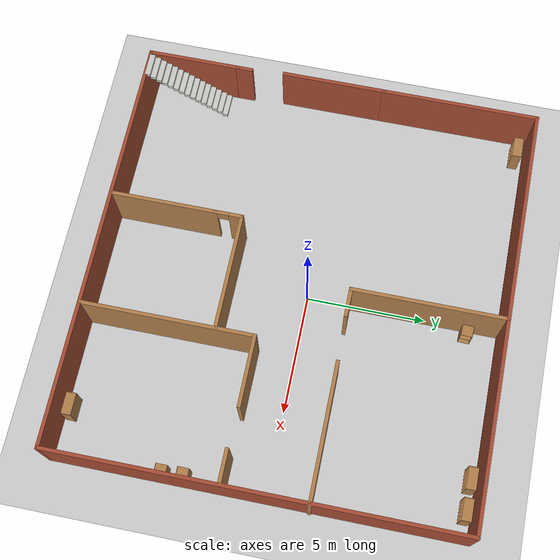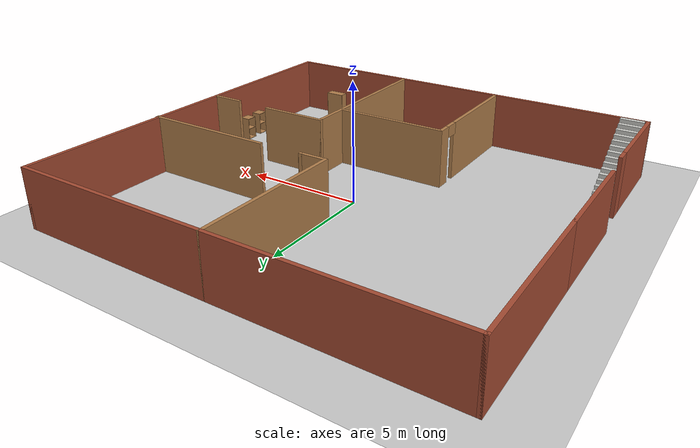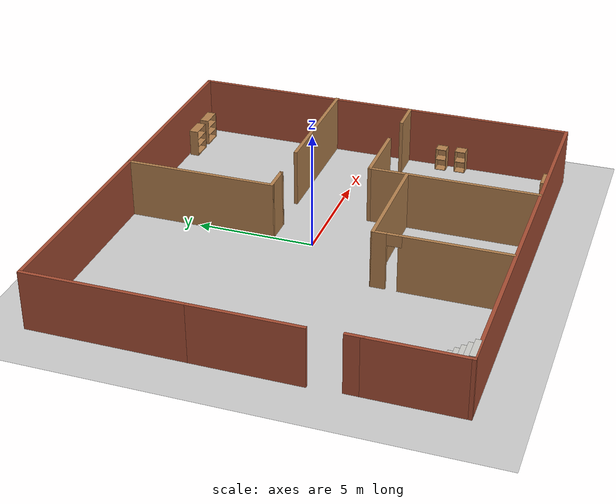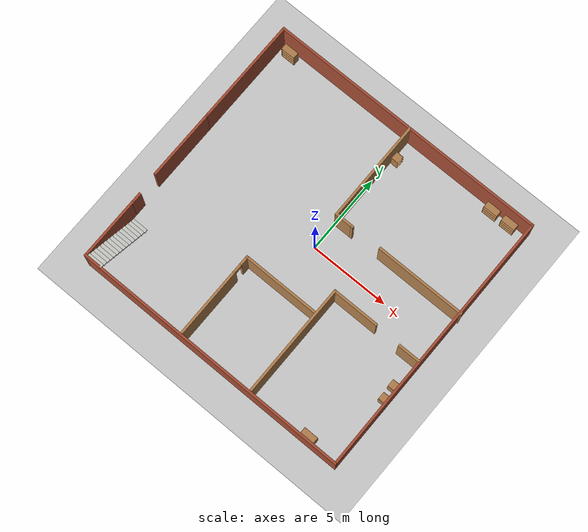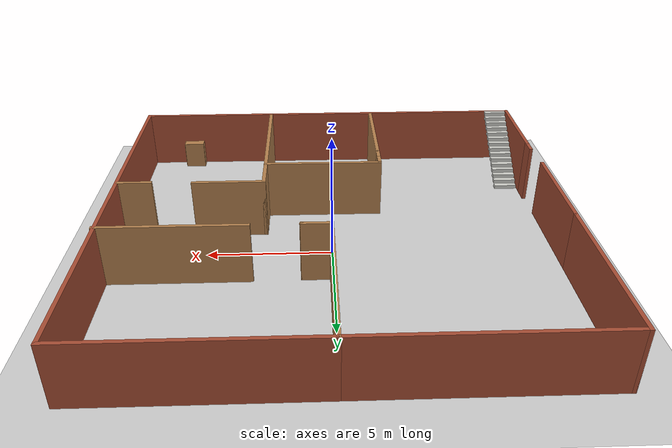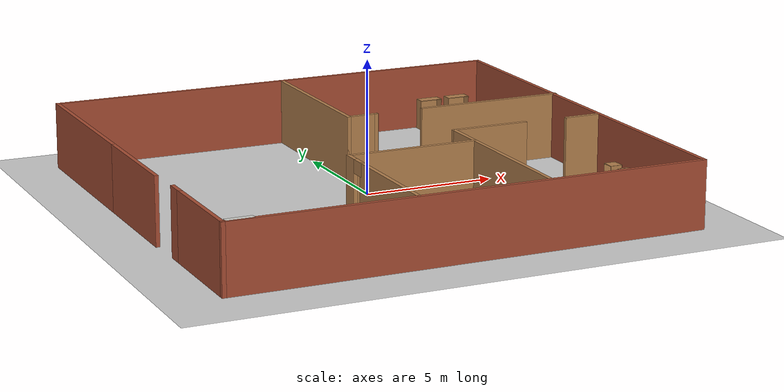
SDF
<sdf version="1.7">
 <world name="default">
  <light name="sun" type="directional">
   <pose>0 0 10 0 -0 0</pose>
   <diffuse>0.8 0.8 0.8 1</diffuse>
   <specular>0.2 0.2 0.2 1</specular>
   <attenuation>
    <range>1000</range>
    <constant>0.9</constant>
    <linear>0.01</linear>
    <quadratic>0.001</quadratic>
   </attenuation>
   <direction>-0.5 0.1 -0.9</direction>
   <spot><inner_angle>0</inner_angle><outer_angle>0</outer_angle><falloff>0</falloff></spot>
  </light>
  <model name="ground_plane">
   <static>1</static>
   <link name="link">
    <collision name="collision">
     <geometry><plane><normal>0 0 1</normal><size>100 100</size></plane></geometry>
     <surface><friction><ode><mu>100</mu><mu2>50</mu2></ode></friction></surface>
    </collision>
    <visual name="visual">
     <cast_shadows>0</cast_shadows>
     <geometry><plane><normal>0 0 1</normal><size>100 100</size></plane></geometry>
     <material>
      <script><uri>file://media/materials/scripts/gazebo.material</uri><name>Gazebo/Grey</name></script>
     </material>
    </visual>
   </link>
  </model>
  <gravity>0 0 -9.8</gravity>
  <magnetic_field>6e-06 2.3e-05 -4.2e-05</magnetic_field>
  <atmosphere type="adiabatic"/>
  <physics type="ode">
   <max_step_size>0.001</max_step_size>
   <real_time_factor>1</real_time_factor>
   <real_time_update_rate>1000</real_time_update_rate>
  </physics>
  <scene><ambient>0.4 0.4 0.4 1</ambient><background>0.7 0.7 0.7 1</background><shadows>1</shadows></scene>
  <audio><device>default</device></audio>
  <spherical_coordinates>
   <surface_model>EARTH_WGS84</surface_model>
   <latitude_deg>0</latitude_deg>
   <longitude_deg>0</longitude_deg>
   <elevation>0</elevation>
   <heading_deg>0</heading_deg>
  </spherical_coordinates>
  <model name="Indoor">
   <pose>-0.163145 -0.298251 0 0 -0 0</pose>
   <link name="Stairs_0">
    <visual name="Stairs_0_Visual_0">
     <pose>-8.16542 -5.04769 0.083333 0 -0 0</pose>
     <geometry><box><size>1 0.233333 0.166667</size></box></geometry>
     <material>
      <script><uri>file://media/materials/scripts/gazebo.material</uri><name>Gazebo/CeilingTiled</name></script>
      <ambient>1 1 1 1</ambient>
     </material>
     <meta><layer>0</layer></meta>
    </visual>
    <collision name="Stairs_0_Collision_0">
     <geometry><box><size>1 0.233333 0.166667</size></box></geometry>
     <pose>-8.16542 -5.04769 0.083333 0 -0 0</pose>
    </collision>
    <visual name="Stairs_0_Visual_1">
     <pose>-8.16542 -5.28102 0.25 0 -0 0</pose>
     <geometry><box><size>1 0.233333 0.166667</size></box></geometry>
     <material>
      <script><uri>file://media/materials/scripts/gazebo.material</uri><name>Gazebo/CeilingTiled</name></script>
      <ambient>1 1 1 1</ambient>
     </material>
     <meta><layer>0</layer></meta>
    </visual>
    <collision name="Stairs_0_Collision_1">
     <geometry><box><size>1 0.233333 0.166667</size></box></geometry>
     <pose>-8.16542 -5.28102 0.25 0 -0 0</pose>
    </collision>
    <visual name="Stairs_0_Visual_2">
     <pose>-8.16542 -5.51436 0.416667 0 -0 0</pose>
     <geometry><box><size>1 0.233333 0.166667</size></box></geometry>
     <material>
      <script><uri>file://media/materials/scripts/gazebo.material</uri><name>Gazebo/CeilingTiled</name></script>
      <ambient>1 1 1 1</ambient>
     </material>
     <meta><layer>0</layer></meta>
    </visual>
    <collision name="Stairs_0_Collision_2">
     <geometry><box><size>1 0.233333 0.166667</size></box></geometry>
     <pose>-8.16542 -5.51436 0.416667 0 -0 0</pose>
    </collision>
    <visual name="Stairs_0_Visual_3">
     <pose>-8.16542 -5.74769 0.583333 0 -0 0</pose>
     <geometry><box><size>1 0.233333 0.166667</size></box></geometry>
     <material>
      <script><uri>file://media/materials/scripts/gazebo.material</uri><name>Gazebo/CeilingTiled</name></script>
      <ambient>1 1 1 1</ambient>
     </material>
     <meta><layer>0</layer></meta>
    </visual>
    <collision name="Stairs_0_Collision_3">
     <geometry><box><size>1 0.233333 0.166667</size></box></geometry>
     <pose>-8.16542 -5.74769 0.583333 0 -0 0</pose>
    </collision>
    <visual name="Stairs_0_Visual_4">
     <pose>-8.16542 -5.98103 0.75 0 -0 0</pose>
     <geometry><box><size>1 0.233333 0.166667</size></box></geometry>
     <material>
      <script><uri>file://media/materials/scripts/gazebo.material</uri><name>Gazebo/CeilingTiled</name></script>
      <ambient>1 1 1 1</ambient>
     </material>
     <meta><layer>0</layer></meta>
    </visual>
    <collision name="Stairs_0_Collision_4">
     <geometry><box><size>1 0.233333 0.166667</size></box></geometry>
     <pose>-8.16542 -5.98103 0.75 0 -0 0</pose>
    </collision>
    <visual name="Stairs_0_Visual_5">
     <pose>-8.16542 -6.21436 0.916667 0 -0 0</pose>
     <geometry><box><size>1 0.233333 0.166667</size></box></geometry>
     <material>
      <script><uri>file://media/materials/scripts/gazebo.material</uri><name>Gazebo/CeilingTiled</name></script>
      <ambient>1 1 1 1</ambient>
     </material>
     <meta><layer>0</layer></meta>
    </visual>
    <collision name="Stairs_0_Collision_5">
     <geometry><box><size>1 0.233333 0.166667</size></box></geometry>
     <pose>-8.16542 -6.21436 0.916667 0 -0 0</pose>
    </collision>
    <visual name="Stairs_0_Visual_6">
     <pose>-8.16542 -6.44769 1.08333 0 -0 0</pose>
     <geometry><box><size>1 0.233333 0.166667</size></box></geometry>
     <material>
      <script><uri>file://media/materials/scripts/gazebo.material</uri><name>Gazebo/CeilingTiled</name></script>
      <ambient>1 1 1 1</ambient>
     </material>
     <meta><layer>0</layer></meta>
    </visual>
    <collision name="Stairs_0_Collision_6">
     <geometry><box><size>1 0.233333 0.166667</size></box></geometry>
     <pose>-8.16542 -6.44769 1.08333 0 -0 0</pose>
    </collision>
    <visual name="Stairs_0_Visual_7">
     <pose>-8.16542 -6.68103 1.25 0 -0 0</pose>
     <geometry><box><size>1 0.233333 0.166667</size></box></geometry>
     <material>
      <script><uri>file://media/materials/scripts/gazebo.material</uri><name>Gazebo/CeilingTiled</name></script>
      <ambient>1 1 1 1</ambient>
     </material>
     <meta><layer>0</layer></meta>
    </visual>
    <collision name="Stairs_0_Collision_7">
     <geometry><box><size>1 0.233333 0.166667</size></box></geometry>
     <pose>-8.16542 -6.68103 1.25 0 -0 0</pose>
    </collision>
    <visual name="Stairs_0_Visual_8">
     <pose>-8.16542 -6.91436 1.41667 0 -0 0</pose>
     <geometry><box><size>1 0.233333 0.166667</size></box></geometry>
     <material>
      <script><uri>file://media/materials/scripts/gazebo.material</uri><name>Gazebo/CeilingTiled</name></script>
      <ambient>1 1 1 1</ambient>
     </material>
     <meta><layer>0</layer></meta>
    </visual>
    <collision name="Stairs_0_Collision_8">
     <geometry><box><size>1 0.233333 0.166667</size></box></geometry>
     <pose>-8.16542 -6.91436 1.41667 0 -0 0</pose>
    </collision>
    <visual name="Stairs_0_Visual_9">
     <pose>-8.16542 -7.14769 1.58333 0 -0 0</pose>
     <geometry><box><size>1 0.233333 0.166667</size></box></geometry>
     <material>
      <script><uri>file://media/materials/scripts/gazebo.material</uri><name>Gazebo/CeilingTiled</name></script>
      <ambient>1 1 1 1</ambient>
     </material>
     <meta><layer>0</layer></meta>
    </visual>
    <collision name="Stairs_0_Collision_9">
     <geometry><box><size>1 0.233333 0.166667</size></box></geometry>
     <pose>-8.16542 -7.14769 1.58333 0 -0 0</pose>
    </collision>
    <visual name="Stairs_0_Visual_10">
     <pose>-8.16542 -7.38103 1.75 0 -0 0</pose>
     <geometry><box><size>1 0.233333 0.166667</size></box></geometry>
     <material>
      <script><uri>file://media/materials/scripts/gazebo.material</uri><name>Gazebo/CeilingTiled</name></script>
      <ambient>1 1 1 1</ambient>
     </material>
     <meta><layer>0</layer></meta>
    </visual>
    <collision name="Stairs_0_Collision_10">
     <geometry><box><size>1 0.233333 0.166667</size></box></geometry>
     <pose>-8.16542 -7.38103 1.75 0 -0 0</pose>
    </collision>
    <visual name="Stairs_0_Visual_11">
     <pose>-8.16542 -7.61436 1.91667 0 -0 0</pose>
     <geometry><box><size>1 0.233333 0.166667</size></box></geometry>
     <material>
      <script><uri>file://media/materials/scripts/gazebo.material</uri><name>Gazebo/CeilingTiled</name></script>
      <ambient>1 1 1 1</ambient>
     </material>
     <meta><layer>0</layer></meta>
    </visual>
    <collision name="Stairs_0_Collision_11">
     <geometry><box><size>1 0.233333 0.166667</size></box></geometry>
     <pose>-8.16542 -7.61436 1.91667 0 -0 0</pose>
    </collision>
    <visual name="Stairs_0_Visual_12">
     <pose>-8.16542 -7.84769 2.08333 0 -0 0</pose>
     <geometry><box><size>1 0.233333 0.166667</size></box></geometry>
     <material>
      <script><uri>file://media/materials/scripts/gazebo.material</uri><name>Gazebo/CeilingTiled</name></script>
      <ambient>1 1 1 1</ambient>
     </material>
     <meta><layer>0</layer></meta>
    </visual>
    <collision name="Stairs_0_Collision_12">
     <geometry><box><size>1 0.233333 0.166667</size></box></geometry>
     <pose>-8.16542 -7.84769 2.08333 0 -0 0</pose>
    </collision>
    <visual name="Stairs_0_Visual_13">
     <pose>-8.16542 -8.08103 2.25 0 -0 0</pose>
     <geometry><box><size>1 0.233333 0.166667</size></box></geometry>
     <material>
      <script><uri>file://media/materials/scripts/gazebo.material</uri><name>Gazebo/CeilingTiled</name></script>
      <ambient>1 1 1 1</ambient>
     </material>
     <meta><layer>0</layer></meta>
    </visual>
    <collision name="Stairs_0_Collision_13">
     <geometry><box><size>1 0.233333 0.166667</size></box></geometry>
     <pose>-8.16542 -8.08103 2.25 0 -0 0</pose>
    </collision>
    <visual name="Stairs_0_Visual_14">
     <pose>-8.16542 -8.31436 2.41667 0 -0 0</pose>
     <geometry><box><size>1 0.233333 0.166667</size></box></geometry>
     <material>
      <script><uri>file://media/materials/scripts/gazebo.material</uri><name>Gazebo/CeilingTiled</name></script>
      <ambient>1 1 1 1</ambient>
     </material>
     <meta><layer>0</layer></meta>
    </visual>
    <collision name="Stairs_0_Collision_14">
     <geometry><box><size>1 0.233333 0.166667</size></box></geometry>
     <pose>-8.16542 -8.31436 2.41667 0 -0 0</pose>
    </collision>
   </link>
   <link name="Wall_0">
    <collision name="Wall_0_Collision">
     <geometry><box><size>4.5 0.15 2.5</size></box></geometry>
     <pose>0 0 1.25 0 -0 0</pose>
    </collision>
    <visual name="Wall_0_Visual">
     <pose>0 0 1.25 0 -0 0</pose>
     <geometry><box><size>4.5 0.15 2.5</size></box></geometry>
     <material>
      <script><uri>file://media/materials/scripts/gazebo.material</uri><name>Gazebo/Bricks</name></script>
      <ambient>1 1 1 1</ambient>
     </material>
     <meta><layer>0</layer></meta>
    </visual>
    <pose>-8.8787 -0.35 0 0 -0 1.5708</pose>
   </link>
   <link name="Wall_10">
    <collision name="Wall_10_Collision">
     <geometry><box><size>6.5 0.15 2.5</size></box></geometry>
     <pose>0 0 1.25 0 -0 0</pose>
    </collision>
    <visual name="Wall_10_Visual">
     <pose>0 0 1.25 0 -0 0</pose>
     <geometry><box><size>6.5 0.15 2.5</size></box></geometry>
     <material>
      <script><uri>file://media/materials/scripts/gazebo.material</uri><name>Gazebo/Wood</name></script>
      <ambient>1 1 1 1</ambient>
     </material>
     <meta><layer>0</layer></meta>
    </visual>
    <pose>0.221304 5.25 0 0 -0 -1.5708</pose>
   </link>
   <link name="Wall_11">
    <collision name="Wall_11_Collision">
     <geometry><box><size>1.25 0.15 2.5</size></box></geometry>
     <pose>0 0 1.25 0 -0 0</pose>
    </collision>
    <visual name="Wall_11_Visual">
     <pose>0 0 1.25 0 -0 0</pose>
     <geometry><box><size>1.25 0.15 2.5</size></box></geometry>
     <material>
      <script><uri>file://media/materials/scripts/gazebo.material</uri><name>Gazebo/Wood</name></script>
      <ambient>1 1 1 1</ambient>
     </material>
     <meta><layer>0</layer></meta>
    </visual>
    <pose>0.771304 2.075 0 0 -0 0</pose>
   </link>
   <link name="Wall_12">
    <collision name="Wall_12_Collision">
     <geometry><box><size>0.15 0.15 2.5</size></box></geometry>
     <pose>0 0 1.25 0 -0 0</pose>
    </collision>
    <visual name="Wall_12_Visual">
     <pose>0 0 1.25 0 -0 0</pose>
     <geometry><box><size>0.15 0.15 2.5</size></box></geometry>
     <material>
      <script><uri>file://media/materials/scripts/gazebo.material</uri><name>Gazebo/Wood</name></script>
      <ambient>1 1 1 1</ambient>
     </material>
     <meta><layer>0</layer></meta>
    </visual>
    <pose>1.3213 2.075 0 0 -0 0</pose>
   </link>
   <link name="Wall_13">
    <collision name="Wall_13_Collision">
     <geometry><box><size>0.16 0.15 2.5</size></box></geometry>
     <pose>0 0 1.25 0 -0 0</pose>
    </collision>
    <visual name="Wall_13_Visual">
     <pose>0 0 1.25 0 -0 0</pose>
     <geometry><box><size>0.16 0.15 2.5</size></box></geometry>
     <material>
      <script><uri>file://media/materials/scripts/gazebo.material</uri><name>Gazebo/Wood</name></script>
      <ambient>1 1 1 1</ambient>
     </material>
     <meta><layer>0</layer></meta>
    </visual>
    <pose>1.3263 2.075 0 0 -0 0</pose>
   </link>
   <link name="Wall_17">
    <collision name="Wall_17_Collision">
     <geometry><box><size>5.75 0.15 2.5</size></box></geometry>
     <pose>0 0 1.25 0 -0 0</pose>
    </collision>
    <visual name="Wall_17_Visual">
     <pose>0 0 1.25 0 -0 0</pose>
     <geometry><box><size>5.75 0.15 2.5</size></box></geometry>
     <material>
      <script><uri>file://media/materials/scripts/gazebo.material</uri><name>Gazebo/Wood</name></script>
      <ambient>1 1 1 1</ambient>
     </material>
     <meta><layer>0</layer></meta>
    </visual>
    <pose>6.0787 2.1132 0 0 -0 3.14159</pose>
   </link>
   <link name="Wall_19">
    <collision name="Wall_19_Collision">
     <geometry><box><size>1.5 0.15 2.5</size></box></geometry>
     <pose>0 0 1.25 0 -0 0</pose>
    </collision>
    <visual name="Wall_19_Visual">
     <pose>0 0 1.25 0 -0 0</pose>
     <geometry><box><size>1.5 0.15 2.5</size></box></geometry>
     <material>
      <script><uri>file://media/materials/scripts/gazebo.material</uri><name>Gazebo/Wood</name></script>
      <ambient>1 1 1 1</ambient>
     </material>
     <meta><layer>0</layer></meta>
    </visual>
    <pose>8.14302 -1.36263 0 0 -0 3.14159</pose>
   </link>
   <link name="Wall_2">
    <collision name="Wall_2_Collision">
     <geometry><box><size>6.75 0.15 2.5</size></box></geometry>
     <pose>0 0 1.25 0 -0 0</pose>
    </collision>
    <visual name="Wall_2_Visual">
     <pose>0 0 1.25 0 -0 0</pose>
     <geometry><box><size>6.75 0.15 2.5</size></box></geometry>
     <material>
      <script><uri>file://media/materials/scripts/gazebo.material</uri><name>Gazebo/Bricks</name></script>
      <ambient>1 1 1 1</ambient>
     </material>
     <meta><layer>0</layer></meta>
    </visual>
    <pose>-8.8787 5.125 0 0 -0 1.5708</pose>
   </link>
   <link name="Wall_22">
    <collision name="Wall_22_Collision">
     <geometry><box><size>7.25 0.15 2.5</size></box></geometry>
     <pose>0 0 1.25 0 -0 0</pose>
    </collision>
    <visual name="Wall_22_Visual">
     <pose>0 0 1.25 0 -0 0</pose>
     <geometry><box><size>7.25 0.15 2.5</size></box></geometry>
     <material>
      <script><uri>file://media/materials/scripts/gazebo.material</uri><name>Gazebo/Wood</name></script>
      <ambient>1 1 1 1</ambient>
     </material>
     <meta><layer>0</layer></meta>
    </visual>
    <pose>2.88188 -4.83035 0 0 -0 -1.5708</pose>
   </link>
   <link name="Wall_26">
    <collision name="Wall_26_Collision">
     <geometry><box><size>3 0.15 2.5</size></box></geometry>
     <pose>0 0 1.25 0 -0 0</pose>
    </collision>
    <visual name="Wall_26_Visual">
     <pose>0 0 1.25 0 -0 0</pose>
     <geometry><box><size>3 0.15 2.5</size></box></geometry>
     <material>
      <script><uri>file://media/materials/scripts/gazebo.material</uri><name>Gazebo/Wood</name></script>
      <ambient>1 1 1 1</ambient>
     </material>
     <meta><layer>0</layer></meta>
    </visual>
    <pose>4.30688 -1.28035 0 0 -0 0</pose>
   </link>
   <link name="Wall_28">
    <collision name="Wall_28_Collision">
     <geometry><box><size>5 0.15 2.5</size></box></geometry>
     <pose>0 0 1.25 0 -0 0</pose>
    </collision>
    <visual name="Wall_28_Visual">
     <pose>0 0 1.25 0 -0 0</pose>
     <geometry><box><size>5 0.15 2.5</size></box></geometry>
     <material>
      <script><uri>file://media/materials/scripts/gazebo.material</uri><name>Gazebo/Wood</name></script>
      <ambient>1 1 1 1</ambient>
     </material>
     <meta><layer>0</layer></meta>
    </visual>
    <pose>0.446415 -2.88223 0 0 -0 3.14159</pose>
   </link>
   <link name="Wall_29">
    <pose>-1.97859 -3.43223 0 0 -0 -1.5708</pose>
    <visual name="Wall_29_Visual_0">
     <pose>-0.312502 0 1.25 0 -0 0</pose>
     <geometry><box><size>0.624996 0.15 2.5</size></box></geometry>
     <material>
      <script><uri>file://media/materials/scripts/gazebo.material</uri><name>Gazebo/Wood</name></script>
      <ambient>1 1 1 1</ambient>
     </material>
     <meta><layer>0</layer></meta>
    </visual>
    <collision name="Wall_29_Collision_0">
     <geometry><box><size>0.624996 0.15 2.5</size></box></geometry>
     <pose>-0.312502 0 1.25 0 -0 0</pose>
    </collision>
    <visual name="Wall_29_Visual_1">
     <pose>0.312498 0 2.25 0 -0 0</pose>
     <geometry><box><size>0.625004 0.15 0.5</size></box></geometry>
     <material>
      <script><uri>file://media/materials/scripts/gazebo.material</uri><name>Gazebo/Wood</name></script>
      <ambient>1 1 1 1</ambient>
     </material>
     <meta><layer>0</layer></meta>
    </visual>
    <collision name="Wall_29_Collision_1">
     <geometry><box><size>0.625004 0.15 0.5</size></box></geometry>
     <pose>0.312498 0 2.25 0 -0 0</pose>
    </collision>
   </link>
   <link name="Wall_3">
    <collision name="Wall_3_Collision">
     <geometry><box><size>9.25 0.15 2.5</size></box></geometry>
     <pose>0 0 1.25 0 -0 0</pose>
    </collision>
    <visual name="Wall_3_Visual">
     <pose>0 0 1.25 0 -0 0</pose>
     <geometry><box><size>9.25 0.15 2.5</size></box></geometry>
     <material>
      <script><uri>file://media/materials/scripts/gazebo.material</uri><name>Gazebo/Bricks</name></script>
      <ambient>1 1 1 1</ambient>
     </material>
     <meta><layer>0</layer></meta>
    </visual>
    <pose>-4.3287 8.425 0 0 -0 0</pose>
   </link>
   <link name="Wall_31">
    <collision name="Wall_31_Collision">
     <geometry><box><size>4.5 0.15 2.5</size></box></geometry>
     <pose>0 0 1.25 0 -0 0</pose>
    </collision>
    <visual name="Wall_31_Visual">
     <pose>0 0 1.25 0 -0 0</pose>
     <geometry><box><size>4.5 0.15 2.5</size></box></geometry>
     <material>
      <script><uri>file://media/materials/scripts/gazebo.material</uri><name>Gazebo/Wood</name></script>
      <ambient>1 1 1 1</ambient>
     </material>
     <meta><layer>0</layer></meta>
    </visual>
    <pose>-1.97859 -6.15723 0 0 -0 -1.5708</pose>
   </link>
   <link name="Wall_4">
    <collision name="Wall_4_Collision">
     <geometry><box><size>8.75 0.15 2.5</size></box></geometry>
     <pose>0 0 1.25 0 -0 0</pose>
    </collision>
    <visual name="Wall_4_Visual">
     <pose>0 0 1.25 0 -0 0</pose>
     <geometry><box><size>8.75 0.15 2.5</size></box></geometry>
     <material>
      <script><uri>file://media/materials/scripts/gazebo.material</uri><name>Gazebo/Bricks</name></script>
      <ambient>1 1 1 1</ambient>
     </material>
     <meta><layer>0</layer></meta>
    </visual>
    <pose>4.5213 8.425 0 0 -0 0</pose>
   </link>
   <link name="Wall_5">
    <collision name="Wall_5_Collision">
     <geometry><box><size>17 0.15 2.5</size></box></geometry>
     <pose>0 0 1.25 0 -0 0</pose>
    </collision>
    <visual name="Wall_5_Visual">
     <pose>0 0 1.25 0 -0 0</pose>
     <geometry><box><size>17 0.15 2.5</size></box></geometry>
     <material>
      <script><uri>file://media/materials/scripts/gazebo.material</uri><name>Gazebo/Bricks</name></script>
      <ambient>1 1 1 1</ambient>
     </material>
     <meta><layer>0</layer></meta>
    </visual>
    <pose>8.8213 -0 0 0 -0 -1.5708</pose>
   </link>
   <link name="Wall_6">
    <collision name="Wall_6_Collision">
     <geometry><box><size>17.75 0.15 2.5</size></box></geometry>
     <pose>0 0 1.25 0 -0 0</pose>
    </collision>
    <visual name="Wall_6_Visual">
     <pose>0 0 1.25 0 -0 0</pose>
     <geometry><box><size>17.75 0.15 2.5</size></box></geometry>
     <material>
      <script><uri>file://media/materials/scripts/gazebo.material</uri><name>Gazebo/Bricks</name></script>
      <ambient>1 1 1 1</ambient>
     </material>
     <meta><layer>0</layer></meta>
    </visual>
    <pose>0.021304 -8.425 0 0 -0 3.14159</pose>
   </link>
   <link name="Wall_7">
    <collision name="Wall_7_Collision">
     <geometry><box><size>4 0.15 2.5</size></box></geometry>
     <pose>0 0 1.25 0 -0 0</pose>
    </collision>
    <visual name="Wall_7_Visual">
     <pose>0 0 1.25 0 -0 0</pose>
     <geometry><box><size>4 0.15 2.5</size></box></geometry>
     <material>
      <script><uri>file://media/materials/scripts/gazebo.material</uri><name>Gazebo/Bricks</name></script>
      <ambient>1 1 1 1</ambient>
     </material>
     <meta><layer>0</layer></meta>
    </visual>
    <pose>-8.7787 -6.5 0 0 -0 1.5708</pose>
   </link>
   <link name="Wall_8">
    <collision name="Wall_8_Collision">
     <geometry><box><size>0.75 0.15 2.5</size></box></geometry>
     <pose>0 0 1.25 0 -0 0</pose>
    </collision>
    <visual name="Wall_8_Visual">
     <pose>0 0 1.25 0 -0 0</pose>
     <geometry><box><size>0.75 0.15 2.5</size></box></geometry>
     <material>
      <script><uri>file://media/materials/scripts/gazebo.material</uri><name>Gazebo/Bricks</name></script>
      <ambient>1 1 1 1</ambient>
     </material>
     <meta><layer>0</layer></meta>
    </visual>
    <pose>-8.7787 -4.275 0 0 -0 1.5708</pose>
   </link>
   <static>1</static>
  </model>
  <model name="bookshelf">
   <static>1</static>
   <link name="link">
    <inertial><mass>1</mass></inertial>
    <collision name="back">
     <pose>0 0.005 0.6 0 -0 0</pose>
     <geometry><box><size>0.9 0.01 1.2</size></box></geometry>
    </collision>
    <visual name="visual1">
     <pose>0 0.005 0.6 0 -0 0</pose>
     <geometry><box><size>0.9 0.01 1.2</size></box></geometry>
     <material>
      <script><uri>file://media/materials/scripts/gazebo.material</uri><name>Gazebo/Wood</name></script>
     </material>
    </visual>
    <collision name="left_side">
     <pose>0.45 -0.195 0.6 0 -0 0</pose>
     <geometry><box><size>0.02 0.4 1.2</size></box></geometry>
    </collision>
    <visual name="visual2">
     <pose>0.45 -0.195 0.6 0 -0 0</pose>
     <geometry><box><size>0.02 0.4 1.2</size></box></geometry>
     <material>
      <script><uri>file://media/materials/scripts/gazebo.material</uri><name>Gazebo/Wood</name></script>
     </material>
    </visual>
    <collision name="right_side">
     <pose>-0.45 -0.195 0.6 0 -0 0</pose>
     <geometry><box><size>0.02 0.4 1.2</size></box></geometry>
    </collision>
    <visual name="visual3">
     <pose>-0.45 -0.195 0.6 0 -0 0</pose>
     <geometry><box><size>0.02 0.4 1.2</size></box></geometry>
     <material>
      <script><uri>file://media/materials/scripts/gazebo.material</uri><name>Gazebo/Wood</name></script>
     </material>
    </visual>
    <collision name="bottom">
     <pose>0 -0.195 0.03 0 -0 0</pose>
     <geometry><box><size>0.88 0.4 0.06</size></box></geometry>
    </collision>
    <visual name="visual4">
     <pose>0 -0.195 0.03 0 -0 0</pose>
     <geometry><box><size>0.88 0.4 0.06</size></box></geometry>
     <material>
      <script><uri>file://media/materials/scripts/gazebo.material</uri><name>Gazebo/Wood</name></script>
     </material>
    </visual>
    <collision name="top">
     <pose>0 -0.195 1.19 0 -0 0</pose>
     <geometry><box><size>0.88 0.4 0.02</size></box></geometry>
    </collision>
    <visual name="visual5">
     <pose>0 -0.195 1.19 0 -0 0</pose>
     <geometry><box><size>0.88 0.4 0.02</size></box></geometry>
     <material>
      <script><uri>file://media/materials/scripts/gazebo.material</uri><name>Gazebo/Wood</name></script>
     </material>
    </visual>
    <collision name="low_shelf">
     <pose>0 -0.195 0.43 0 -0 0</pose>
     <geometry><box><size>0.88 0.4 0.02</size></box></geometry>
    </collision>
    <visual name="visual6">
     <pose>0 -0.195 0.43 0 -0 0</pose>
     <geometry><box><size>0.88 0.4 0.02</size></box></geometry>
     <material>
      <script><uri>file://media/materials/scripts/gazebo.material</uri><name>Gazebo/Wood</name></script>
     </material>
    </visual>
    <collision name="high_shelf">
     <pose>0 -0.195 0.8 0 -0 0</pose>
     <geometry><box><size>0.88 0.4 0.02</size></box></geometry>
    </collision>
    <visual name="visual7">
     <pose>0 -0.195 0.8 0 -0 0</pose>
     <geometry><box><size>0.88 0.4 0.02</size></box></geometry>
     <material>
      <script><uri>file://media/materials/scripts/gazebo.material</uri><name>Gazebo/Wood</name></script>
     </material>
    </visual>
   </link>
   <pose>7.52746 7.97587 0 0 -0 0</pose>
  </model>
  <model name="bookshelf_0">
   <static>1</static>
   <link name="link">
    <inertial><mass>1</mass></inertial>
    <collision name="back">
     <pose>0 0.005 0.6 0 -0 0</pose>
     <geometry><box><size>0.9 0.01 1.2</size></box></geometry>
    </collision>
    <visual name="visual1">
     <pose>0 0.005 0.6 0 -0 0</pose>
     <geometry><box><size>0.9 0.01 1.2</size></box></geometry>
     <material>
      <script><uri>file://media/materials/scripts/gazebo.material</uri><name>Gazebo/Wood</name></script>
     </material>
    </visual>
    <collision name="left_side">
     <pose>0.45 -0.195 0.6 0 -0 0</pose>
     <geometry><box><size>0.02 0.4 1.2</size></box></geometry>
    </collision>
    <visual name="visual2">
     <pose>0.45 -0.195 0.6 0 -0 0</pose>
     <geometry><box><size>0.02 0.4 1.2</size></box></geometry>
     <material>
      <script><uri>file://media/materials/scripts/gazebo.material</uri><name>Gazebo/Wood</name></script>
     </material>
    </visual>
    <collision name="right_side">
     <pose>-0.45 -0.195 0.6 0 -0 0</pose>
     <geometry><box><size>0.02 0.4 1.2</size></box></geometry>
    </collision>
    <visual name="visual3">
     <pose>-0.45 -0.195 0.6 0 -0 0</pose>
     <geometry><box><size>0.02 0.4 1.2</size></box></geometry>
     <material>
      <script><uri>file://media/materials/scripts/gazebo.material</uri><name>Gazebo/Wood</name></script>
     </material>
    </visual>
    <collision name="bottom">
     <pose>0 -0.195 0.03 0 -0 0</pose>
     <geometry><box><size>0.88 0.4 0.06</size></box></geometry>
    </collision>
    <visual name="visual4">
     <pose>0 -0.195 0.03 0 -0 0</pose>
     <geometry><box><size>0.88 0.4 0.06</size></box></geometry>
     <material>
      <script><uri>file://media/materials/scripts/gazebo.material</uri><name>Gazebo/Wood</name></script>
     </material>
    </visual>
    <collision name="top">
     <pose>0 -0.195 1.19 0 -0 0</pose>
     <geometry><box><size>0.88 0.4 0.02</size></box></geometry>
    </collision>
    <visual name="visual5">
     <pose>0 -0.195 1.19 0 -0 0</pose>
     <geometry><box><size>0.88 0.4 0.02</size></box></geometry>
     <material>
      <script><uri>file://media/materials/scripts/gazebo.material</uri><name>Gazebo/Wood</name></script>
     </material>
    </visual>
    <collision name="low_shelf">
     <pose>0 -0.195 0.43 0 -0 0</pose>
     <geometry><box><size>0.88 0.4 0.02</size></box></geometry>
    </collision>
    <visual name="visual6">
     <pose>0 -0.195 0.43 0 -0 0</pose>
     <geometry><box><size>0.88 0.4 0.02</size></box></geometry>
     <material>
      <script><uri>file://media/materials/scripts/gazebo.material</uri><name>Gazebo/Wood</name></script>
     </material>
    </visual>
    <collision name="high_shelf">
     <pose>0 -0.195 0.8 0 -0 0</pose>
     <geometry><box><size>0.88 0.4 0.02</size></box></geometry>
    </collision>
    <visual name="visual7">
     <pose>0 -0.195 0.8 0 -0 0</pose>
     <geometry><box><size>0.88 0.4 0.02</size></box></geometry>
     <material>
      <script><uri>file://media/materials/scripts/gazebo.material</uri><name>Gazebo/Wood</name></script>
     </material>
    </visual>
   </link>
   <pose>6.30804 7.97945 0 0 -0 0</pose>
  </model>
  <model name="cabinet">
   <static>1</static>
   <link name="cabinet_bottom_plate">
    <inertial>
     <pose>0 0 -1 0 -0 0</pose>
     <inertia><ixx>2.05</ixx><ixy>0</ixy><ixz>0</ixz><iyy>2.05</iyy><iyz>0</iyz><izz>2.05</izz></inertia>
     <mass>25</mass>
    </inertial>
    <collision name="cabinet_bottom_plate_geom">
     <pose>0 0 0.01 0 -0 0</pose>
     <geometry><box><size>0.45 0.45 0.02</size></box></geometry>
    </collision>
    <visual name="cabinet_bottom_plate_geom_visual">
     <pose>0 0 0.01 0 -0 0</pose>
     <geometry><box><size>0.45 0.45 0.02</size></box></geometry>
     <material>
      <script><uri>file://media/materials/scripts/gazebo.material</uri><name>Gazebo/Wood</name></script>
     </material>
    </visual>
    <collision name="cabinet_bottom_plate_geom_cabinet_back_plate">
     <pose>0.235 0 0.51 0 -0 0</pose>
     <geometry><box><size>0.02 0.45 1.02</size></box></geometry>
    </collision>
    <visual name="cabinet_bottom_plate_geom_cabinet_back_plate_visual">
     <pose>0.235 0 0.51 0 -0 0</pose>
     <geometry><box><size>0.02 0.45 1.02</size></box></geometry>
     <material>
      <script><uri>file://media/materials/scripts/gazebo.material</uri><name>Gazebo/Wood</name></script>
     </material>
    </visual>
    <collision name="cabinet_bottom_plate_geom_cabinet_left_plate">
     <pose>0 0.235 0.51 0 -0 0</pose>
     <geometry><box><size>0.45 0.02 1.02</size></box></geometry>
    </collision>
    <visual name="cabinet_bottom_plate_geom_cabinet_left_plate_visual">
     <pose>0 0.235 0.51 0 -0 0</pose>
     <geometry><box><size>0.45 0.02 1.02</size></box></geometry>
     <material>
      <script><uri>file://media/materials/scripts/gazebo.material</uri><name>Gazebo/Wood</name></script>
     </material>
    </visual>
    <collision name="cabinet_bottom_plate_geom_cabinet_middle_plate">
     <pose>0 0 0.51 0 -0 0</pose>
     <geometry><box><size>0.45 0.45 0.02</size></box></geometry>
    </collision>
    <visual name="cabinet_bottom_plate_geom_cabinet_middle_plate_visual">
     <pose>0 0 0.51 0 -0 0</pose>
     <geometry><box><size>0.45 0.45 0.02</size></box></geometry>
     <material>
      <script><uri>file://media/materials/scripts/gazebo.material</uri><name>Gazebo/Wood</name></script>
     </material>
    </visual>
    <collision name="cabinet_bottom_plate_geom_cabinet_right_plate">
     <pose>0 -0.235 0.51 0 -0 0</pose>
     <geometry><box><size>0.45 0.02 1.02</size></box></geometry>
    </collision>
    <visual name="cabinet_bottom_plate_geom_cabinet_right_plate_visual">
     <pose>0 -0.235 0.51 0 -0 0</pose>
     <geometry><box><size>0.45 0.02 1.02</size></box></geometry>
     <material>
      <script><uri>file://media/materials/scripts/gazebo.material</uri><name>Gazebo/Wood</name></script>
     </material>
    </visual>
    <collision name="cabinet_bottom_plate_geom_cabinet_top_plate">
     <pose>0 0 1.01 0 -0 0</pose>
     <geometry><box><size>0.45 0.45 0.02</size></box></geometry>
    </collision>
    <visual name="cabinet_bottom_plate_geom_cabinet_top_plate_visual">
     <pose>0 0 1.01 0 -0 0</pose>
     <geometry><box><size>0.45 0.45 0.02</size></box></geometry>
     <material>
      <script><uri>file://media/materials/scripts/gazebo.material</uri><name>Gazebo/Wood</name></script>
     </material>
    </visual>
   </link>
   <pose>0.385249 6.7491 0 0 -0 3.10049</pose>
  </model>
  <model name="cabinet_0">
   <static>1</static>
   <link name="cabinet_bottom_plate">
    <inertial>
     <pose>0 0 -1 0 -0 0</pose>
     <inertia><ixx>2.05</ixx><ixy>0</ixy><ixz>0</ixz><iyy>2.05</iyy><iyz>0</iyz><izz>2.05</izz></inertia>
     <mass>25</mass>
    </inertial>
    <collision name="cabinet_bottom_plate_geom">
     <pose>0 0 0.01 0 -0 0</pose>
     <geometry><box><size>0.45 0.45 0.02</size></box></geometry>
    </collision>
    <visual name="cabinet_bottom_plate_geom_visual">
     <pose>0 0 0.01 0 -0 0</pose>
     <geometry><box><size>0.45 0.45 0.02</size></box></geometry>
     <material>
      <script><uri>file://media/materials/scripts/gazebo.material</uri><name>Gazebo/Wood</name></script>
     </material>
    </visual>
    <collision name="cabinet_bottom_plate_geom_cabinet_back_plate">
     <pose>0.235 0 0.51 0 -0 0</pose>
     <geometry><box><size>0.02 0.45 1.02</size></box></geometry>
    </collision>
    <visual name="cabinet_bottom_plate_geom_cabinet_back_plate_visual">
     <pose>0.235 0 0.51 0 -0 0</pose>
     <geometry><box><size>0.02 0.45 1.02</size></box></geometry>
     <material>
      <script><uri>file://media/materials/scripts/gazebo.material</uri><name>Gazebo/Wood</name></script>
     </material>
    </visual>
    <collision name="cabinet_bottom_plate_geom_cabinet_left_plate">
     <pose>0 0.235 0.51 0 -0 0</pose>
     <geometry><box><size>0.45 0.02 1.02</size></box></geometry>
    </collision>
    <visual name="cabinet_bottom_plate_geom_cabinet_left_plate_visual">
     <pose>0 0.235 0.51 0 -0 0</pose>
     <geometry><box><size>0.45 0.02 1.02</size></box></geometry>
     <material>
      <script><uri>file://media/materials/scripts/gazebo.material</uri><name>Gazebo/Wood</name></script>
     </material>
    </visual>
    <collision name="cabinet_bottom_plate_geom_cabinet_middle_plate">
     <pose>0 0 0.51 0 -0 0</pose>
     <geometry><box><size>0.45 0.45 0.02</size></box></geometry>
    </collision>
    <visual name="cabinet_bottom_plate_geom_cabinet_middle_plate_visual">
     <pose>0 0 0.51 0 -0 0</pose>
     <geometry><box><size>0.45 0.45 0.02</size></box></geometry>
     <material>
      <script><uri>file://media/materials/scripts/gazebo.material</uri><name>Gazebo/Wood</name></script>
     </material>
    </visual>
    <collision name="cabinet_bottom_plate_geom_cabinet_right_plate">
     <pose>0 -0.235 0.51 0 -0 0</pose>
     <geometry><box><size>0.45 0.02 1.02</size></box></geometry>
    </collision>
    <visual name="cabinet_bottom_plate_geom_cabinet_right_plate_visual">
     <pose>0 -0.235 0.51 0 -0 0</pose>
     <geometry><box><size>0.45 0.02 1.02</size></box></geometry>
     <material>
      <script><uri>file://media/materials/scripts/gazebo.material</uri><name>Gazebo/Wood</name></script>
     </material>
    </visual>
    <collision name="cabinet_bottom_plate_geom_cabinet_top_plate">
     <pose>0 0 1.01 0 -0 0</pose>
     <geometry><box><size>0.45 0.45 0.02</size></box></geometry>
    </collision>
    <visual name="cabinet_bottom_plate_geom_cabinet_top_plate_visual">
     <pose>0 0 1.01 0 -0 0</pose>
     <geometry><box><size>0.45 0.45 0.02</size></box></geometry>
     <material>
      <script><uri>file://media/materials/scripts/gazebo.material</uri><name>Gazebo/Wood</name></script>
     </material>
    </visual>
   </link>
   <pose>8.31198 -3.31523 0 0 -0 0</pose>
  </model>
  <model name="cabinet_1">
   <static>1</static>
   <link name="cabinet_bottom_plate">
    <inertial>
     <pose>0 0 -1 0 -0 0</pose>
     <inertia><ixx>2.05</ixx><ixy>0</ixy><ixz>0</ixz><iyy>2.05</iyy><iyz>0</iyz><izz>2.05</izz></inertia>
     <mass>25</mass>
    </inertial>
    <collision name="cabinet_bottom_plate_geom">
     <pose>0 0 0.01 0 -0 0</pose>
     <geometry><box><size>0.45 0.45 0.02</size></box></geometry>
    </collision>
    <visual name="cabinet_bottom_plate_geom_visual">
     <pose>0 0 0.01 0 -0 0</pose>
     <geometry><box><size>0.45 0.45 0.02</size></box></geometry>
     <material>
      <script><uri>file://media/materials/scripts/gazebo.material</uri><name>Gazebo/Wood</name></script>
     </material>
    </visual>
    <collision name="cabinet_bottom_plate_geom_cabinet_back_plate">
     <pose>0.235 0 0.51 0 -0 0</pose>
     <geometry><box><size>0.02 0.45 1.02</size></box></geometry>
    </collision>
    <visual name="cabinet_bottom_plate_geom_cabinet_back_plate_visual">
     <pose>0.235 0 0.51 0 -0 0</pose>
     <geometry><box><size>0.02 0.45 1.02</size></box></geometry>
     <material>
      <script><uri>file://media/materials/scripts/gazebo.material</uri><name>Gazebo/Wood</name></script>
     </material>
    </visual>
    <collision name="cabinet_bottom_plate_geom_cabinet_left_plate">
     <pose>0 0.235 0.51 0 -0 0</pose>
     <geometry><box><size>0.45 0.02 1.02</size></box></geometry>
    </collision>
    <visual name="cabinet_bottom_plate_geom_cabinet_left_plate_visual">
     <pose>0 0.235 0.51 0 -0 0</pose>
     <geometry><box><size>0.45 0.02 1.02</size></box></geometry>
     <material>
      <script><uri>file://media/materials/scripts/gazebo.material</uri><name>Gazebo/Wood</name></script>
     </material>
    </visual>
    <collision name="cabinet_bottom_plate_geom_cabinet_middle_plate">
     <pose>0 0 0.51 0 -0 0</pose>
     <geometry><box><size>0.45 0.45 0.02</size></box></geometry>
    </collision>
    <visual name="cabinet_bottom_plate_geom_cabinet_middle_plate_visual">
     <pose>0 0 0.51 0 -0 0</pose>
     <geometry><box><size>0.45 0.45 0.02</size></box></geometry>
     <material>
      <script><uri>file://media/materials/scripts/gazebo.material</uri><name>Gazebo/Wood</name></script>
     </material>
    </visual>
    <collision name="cabinet_bottom_plate_geom_cabinet_right_plate">
     <pose>0 -0.235 0.51 0 -0 0</pose>
     <geometry><box><size>0.45 0.02 1.02</size></box></geometry>
    </collision>
    <visual name="cabinet_bottom_plate_geom_cabinet_right_plate_visual">
     <pose>0 -0.235 0.51 0 -0 0</pose>
     <geometry><box><size>0.45 0.02 1.02</size></box></geometry>
     <material>
      <script><uri>file://media/materials/scripts/gazebo.material</uri><name>Gazebo/Wood</name></script>
     </material>
    </visual>
    <collision name="cabinet_bottom_plate_geom_cabinet_top_plate">
     <pose>0 0 1.01 0 -0 0</pose>
     <geometry><box><size>0.45 0.45 0.02</size></box></geometry>
    </collision>
    <visual name="cabinet_bottom_plate_geom_cabinet_top_plate_visual">
     <pose>0 0 1.01 0 -0 0</pose>
     <geometry><box><size>0.45 0.45 0.02</size></box></geometry>
     <material>
      <script><uri>file://media/materials/scripts/gazebo.material</uri><name>Gazebo/Wood</name></script>
     </material>
    </visual>
   </link>
   <pose>8.35652 -4.18367 0 0 -0 0</pose>
  </model>
  <model name="bookshelf_1">
   <static>1</static>
   <link name="link">
    <inertial><mass>1</mass></inertial>
    <collision name="back">
     <pose>0 0.005 0.6 0 -0 0</pose>
     <geometry><box><size>0.9 0.01 1.2</size></box></geometry>
    </collision>
    <visual name="visual1">
     <pose>0 0.005 0.6 0 -0 0</pose>
     <geometry><box><size>0.9 0.01 1.2</size></box></geometry>
     <material>
      <script><uri>file://media/materials/scripts/gazebo.material</uri><name>Gazebo/Wood</name></script>
     </material>
    </visual>
    <collision name="left_side">
     <pose>0.45 -0.195 0.6 0 -0 0</pose>
     <geometry><box><size>0.02 0.4 1.2</size></box></geometry>
    </collision>
    <visual name="visual2">
     <pose>0.45 -0.195 0.6 0 -0 0</pose>
     <geometry><box><size>0.02 0.4 1.2</size></box></geometry>
     <material>
      <script><uri>file://media/materials/scripts/gazebo.material</uri><name>Gazebo/Wood</name></script>
     </material>
    </visual>
    <collision name="right_side">
     <pose>-0.45 -0.195 0.6 0 -0 0</pose>
     <geometry><box><size>0.02 0.4 1.2</size></box></geometry>
    </collision>
    <visual name="visual3">
     <pose>-0.45 -0.195 0.6 0 -0 0</pose>
     <geometry><box><size>0.02 0.4 1.2</size></box></geometry>
     <material>
      <script><uri>file://media/materials/scripts/gazebo.material</uri><name>Gazebo/Wood</name></script>
     </material>
    </visual>
    <collision name="bottom">
     <pose>0 -0.195 0.03 0 -0 0</pose>
     <geometry><box><size>0.88 0.4 0.06</size></box></geometry>
    </collision>
    <visual name="visual4">
     <pose>0 -0.195 0.03 0 -0 0</pose>
     <geometry><box><size>0.88 0.4 0.06</size></box></geometry>
     <material>
      <script><uri>file://media/materials/scripts/gazebo.material</uri><name>Gazebo/Wood</name></script>
     </material>
    </visual>
    <collision name="top">
     <pose>0 -0.195 1.19 0 -0 0</pose>
     <geometry><box><size>0.88 0.4 0.02</size></box></geometry>
    </collision>
    <visual name="visual5">
     <pose>0 -0.195 1.19 0 -0 0</pose>
     <geometry><box><size>0.88 0.4 0.02</size></box></geometry>
     <material>
      <script><uri>file://media/materials/scripts/gazebo.material</uri><name>Gazebo/Wood</name></script>
     </material>
    </visual>
    <collision name="low_shelf">
     <pose>0 -0.195 0.43 0 -0 0</pose>
     <geometry><box><size>0.88 0.4 0.02</size></box></geometry>
    </collision>
    <visual name="visual6">
     <pose>0 -0.195 0.43 0 -0 0</pose>
     <geometry><box><size>0.88 0.4 0.02</size></box></geometry>
     <material>
      <script><uri>file://media/materials/scripts/gazebo.material</uri><name>Gazebo/Wood</name></script>
     </material>
    </visual>
    <collision name="high_shelf">
     <pose>0 -0.195 0.8 0 -0 0</pose>
     <geometry><box><size>0.88 0.4 0.02</size></box></geometry>
    </collision>
    <visual name="visual7">
     <pose>0 -0.195 0.8 0 -0 0</pose>
     <geometry><box><size>0.88 0.4 0.02</size></box></geometry>
     <material>
      <script><uri>file://media/materials/scripts/gazebo.material</uri><name>Gazebo/Wood</name></script>
     </material>
    </visual>
   </link>
   <pose>6.55297 -8.16932 0 0 -0 0</pose>
  </model>
  <model name="bookshelf_2">
   <static>1</static>
   <link name="link">
    <inertial><mass>1</mass></inertial>
    <collision name="back">
     <pose>0 0.005 0.6 0 -0 0</pose>
     <geometry><box><size>0.9 0.01 1.2</size></box></geometry>
    </collision>
    <visual name="visual1">
     <pose>0 0.005 0.6 0 -0 0</pose>
     <geometry><box><size>0.9 0.01 1.2</size></box></geometry>
     <material>
      <script><uri>file://media/materials/scripts/gazebo.material</uri><name>Gazebo/Wood</name></script>
     </material>
    </visual>
    <collision name="left_side">
     <pose>0.45 -0.195 0.6 0 -0 0</pose>
     <geometry><box><size>0.02 0.4 1.2</size></box></geometry>
    </collision>
    <visual name="visual2">
     <pose>0.45 -0.195 0.6 0 -0 0</pose>
     <geometry><box><size>0.02 0.4 1.2</size></box></geometry>
     <material>
      <script><uri>file://media/materials/scripts/gazebo.material</uri><name>Gazebo/Wood</name></script>
     </material>
    </visual>
    <collision name="right_side">
     <pose>-0.45 -0.195 0.6 0 -0 0</pose>
     <geometry><box><size>0.02 0.4 1.2</size></box></geometry>
    </collision>
    <visual name="visual3">
     <pose>-0.45 -0.195 0.6 0 -0 0</pose>
     <geometry><box><size>0.02 0.4 1.2</size></box></geometry>
     <material>
      <script><uri>file://media/materials/scripts/gazebo.material</uri><name>Gazebo/Wood</name></script>
     </material>
    </visual>
    <collision name="bottom">
     <pose>0 -0.195 0.03 0 -0 0</pose>
     <geometry><box><size>0.88 0.4 0.06</size></box></geometry>
    </collision>
    <visual name="visual4">
     <pose>0 -0.195 0.03 0 -0 0</pose>
     <geometry><box><size>0.88 0.4 0.06</size></box></geometry>
     <material>
      <script><uri>file://media/materials/scripts/gazebo.material</uri><name>Gazebo/Wood</name></script>
     </material>
    </visual>
    <collision name="top">
     <pose>0 -0.195 1.19 0 -0 0</pose>
     <geometry><box><size>0.88 0.4 0.02</size></box></geometry>
    </collision>
    <visual name="visual5">
     <pose>0 -0.195 1.19 0 -0 0</pose>
     <geometry><box><size>0.88 0.4 0.02</size></box></geometry>
     <material>
      <script><uri>file://media/materials/scripts/gazebo.material</uri><name>Gazebo/Wood</name></script>
     </material>
    </visual>
    <collision name="low_shelf">
     <pose>0 -0.195 0.43 0 -0 0</pose>
     <geometry><box><size>0.88 0.4 0.02</size></box></geometry>
    </collision>
    <visual name="visual6">
     <pose>0 -0.195 0.43 0 -0 0</pose>
     <geometry><box><size>0.88 0.4 0.02</size></box></geometry>
     <material>
      <script><uri>file://media/materials/scripts/gazebo.material</uri><name>Gazebo/Wood</name></script>
     </material>
    </visual>
    <collision name="high_shelf">
     <pose>0 -0.195 0.8 0 -0 0</pose>
     <geometry><box><size>0.88 0.4 0.02</size></box></geometry>
    </collision>
    <visual name="visual7">
     <pose>0 -0.195 0.8 0 -0 0</pose>
     <geometry><box><size>0.88 0.4 0.02</size></box></geometry>
     <material>
      <script><uri>file://media/materials/scripts/gazebo.material</uri><name>Gazebo/Wood</name></script>
     </material>
    </visual>
   </link>
   <pose>-8.23572 7.86273 0 0 -0 0</pose>
  </model>
 </world>
</sdf>
